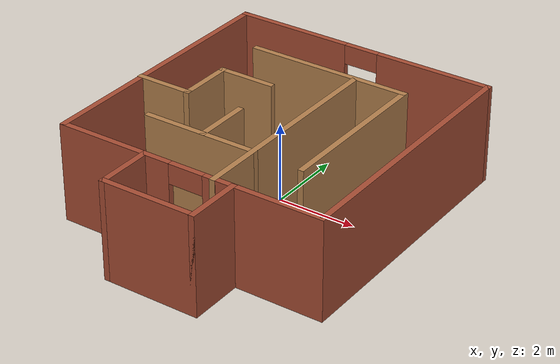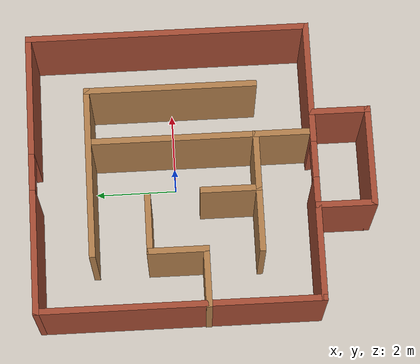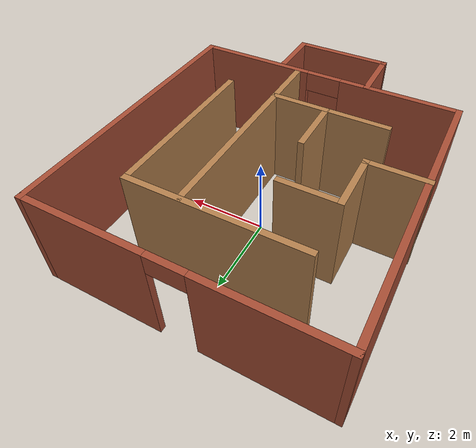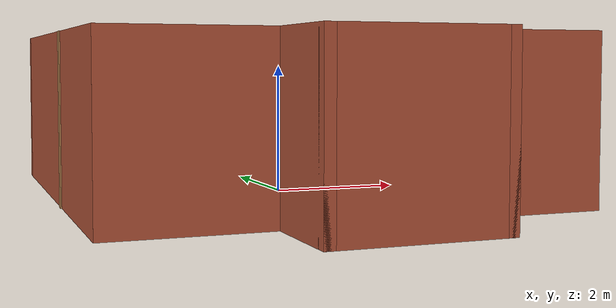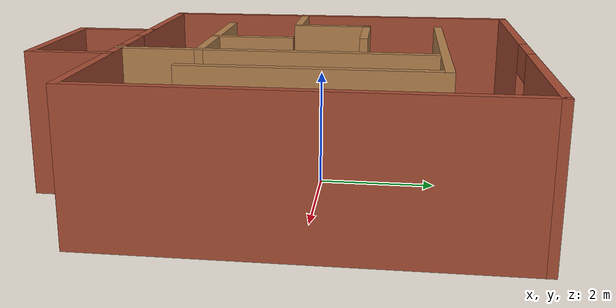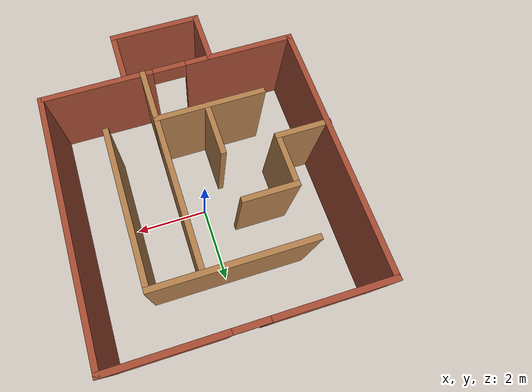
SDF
<?xml version='1.0'?>
<sdf version='1.7'>
  <model name='maze'>
    <pose>-0.0338 -0.658124 0 0 -0 0</pose>
    <link name='Wall_0'>
      <collision name='Wall_0_Collision'>
        <geometry>
          <box>
            <size>7 0.15 2.5</size>
          </box>
        </geometry>
        <pose>0 0 1.25 0 -0 0</pose>
      </collision>
      <visual name='Wall_0_Visual'>
        <pose>0 0 1.25 0 -0 0</pose>
        <geometry>
          <box>
            <size>7 0.15 2.5</size>
          </box>
        </geometry>
        <material>
          <script>
            <uri>file://media/materials/scripts/gazebo.material</uri>
            <name>Gazebo/Bricks</name>
          </script>
          <ambient>1 1 1 1</ambient>
        </material>
        <meta>
          <layer>0</layer>
        </meta>
      </visual>
      <pose>-3.41626 0.681812 0 0 -0 -1.5708</pose>
    </link>
    <link name='Wall_10'>
      <collision name='Wall_10_Collision'>
        <geometry>
          <box>
            <size>4.25 0.15 2.5</size>
          </box>
        </geometry>
        <pose>0 0 1.25 0 -0 0</pose>
      </collision>
      <visual name='Wall_10_Visual'>
        <pose>0 0 1.25 0 -0 0</pose>
        <geometry>
          <box>
            <size>4.25 0.15 2.5</size>
          </box>
        </geometry>
        <material>
          <script>
            <uri>file://media/materials/scripts/gazebo.material</uri>
            <name>Gazebo/Wood</name>
          </script>
          <ambient>1 1 1 1</ambient>
        </material>
        <meta>
          <layer>0</layer>
        </meta>
      </visual>
      <pose>2.01299 0.675098 0 0 -0 -1.5708</pose>
    </link>
    <link name='Wall_12'>
      <collision name='Wall_12_Collision'>
        <geometry>
          <box>
            <size>5.60693 0.15 2.5</size>
          </box>
        </geometry>
        <pose>0 0 1.25 0 -0 0</pose>
      </collision>
      <visual name='Wall_12_Visual'>
        <pose>0 0 1.25 0 -0 0</pose>
        <geometry>
          <box>
            <size>5.60693 0.15 2.5</size>
          </box>
        </geometry>
        <material>
          <script>
            <uri>file://media/materials/scripts/gazebo.material</uri>
            <name>Gazebo/Wood</name>
          </script>
          <ambient>1 1 1 1</ambient>
        </material>
        <meta>
          <layer>0</layer>
        </meta>
      </visual>
      <pose>0.711399 -0.020842 0 0 -0 -1.5708</pose>
    </link>
    <link name='Wall_14'>
      <collision name='Wall_14_Collision'>
        <geometry>
          <box>
            <size>1.5 0.15 2.5</size>
          </box>
        </geometry>
        <pose>0 0 1.25 0 -0 0</pose>
      </collision>
      <visual name='Wall_14_Visual'>
        <pose>0 0 1.25 0 -0 0</pose>
        <geometry>
          <box>
            <size>1.5 0.15 2.5</size>
          </box>
        </geometry>
        <material>
          <script>
            <uri>file://media/materials/scripts/gazebo.material</uri>
            <name>Gazebo/Wood</name>
          </script>
          <ambient>1 1 1 1</ambient>
        </material>
        <meta>
          <layer>0</layer>
        </meta>
      </visual>
      <pose>-2.75874 -0.003352 0 0 -0 0</pose>
    </link>
    <link name='Wall_15'>
      <collision name='Wall_15_Collision'>
        <geometry>
          <box>
            <size>1.5 0.15 2.5</size>
          </box>
        </geometry>
        <pose>0 0 1.25 0 -0 0</pose>
      </collision>
      <visual name='Wall_15_Visual'>
        <pose>0 0 1.25 0 -0 0</pose>
        <geometry>
          <box>
            <size>1.5 0.15 2.5</size>
          </box>
        </geometry>
        <material>
          <script>
            <uri>file://media/materials/scripts/gazebo.material</uri>
            <name>Gazebo/Wood</name>
          </script>
          <ambient>1 1 1 1</ambient>
        </material>
        <meta>
          <layer>0</layer>
        </meta>
      </visual>
      <pose>-2.08374 0.671648 0 0 -0 1.5708</pose>
    </link>
    <link name='Wall_16'>
      <collision name='Wall_16_Collision'>
        <geometry>
          <box>
            <size>1.5 0.15 2.5</size>
          </box>
        </geometry>
        <pose>0 0 1.25 0 -0 0</pose>
      </collision>
      <visual name='Wall_16_Visual'>
        <pose>0 0 1.25 0 -0 0</pose>
        <geometry>
          <box>
            <size>1.5 0.15 2.5</size>
          </box>
        </geometry>
        <material>
          <script>
            <uri>file://media/materials/scripts/gazebo.material</uri>
            <name>Gazebo/Wood</name>
          </script>
          <ambient>1 1 1 1</ambient>
        </material>
        <meta>
          <layer>0</layer>
        </meta>
      </visual>
      <pose>-1.40874 1.34665 0 0 -0 0</pose>
    </link>
    <link name='Wall_18'>
      <collision name='Wall_18_Collision'>
        <geometry>
          <box>
            <size>3 0.15 2.5</size>
          </box>
        </geometry>
        <pose>0 0 1.25 0 -0 0</pose>
      </collision>
      <visual name='Wall_18_Visual'>
        <pose>0 0 1.25 0 -0 0</pose>
        <geometry>
          <box>
            <size>3 0.15 2.5</size>
          </box>
        </geometry>
        <material>
          <script>
            <uri>file://media/materials/scripts/gazebo.material</uri>
            <name>Gazebo/Wood</name>
          </script>
          <ambient>1 1 1 1</ambient>
        </material>
        <meta>
          <layer>0</layer>
        </meta>
      </visual>
      <pose>-0.713601 -1.35009 0 0 -0 3.14159</pose>
    </link>
    <link name='Wall_20'>
      <collision name='Wall_20_Collision'>
        <geometry>
          <box>
            <size>1.5 0.15 2.5</size>
          </box>
        </geometry>
        <pose>0 0 1.25 0 -0 0</pose>
      </collision>
      <visual name='Wall_20_Visual'>
        <pose>0 0 1.25 0 -0 0</pose>
        <geometry>
          <box>
            <size>1.5 0.15 2.5</size>
          </box>
        </geometry>
        <material>
          <script>
            <uri>file://media/materials/scripts/gazebo.material</uri>
            <name>Gazebo/Wood</name>
          </script>
          <ambient>1 1 1 1</ambient>
        </material>
        <meta>
          <layer>0</layer>
        </meta>
      </visual>
      <pose>-0.635335 -0.675087 0 0 -0 1.5708</pose>
    </link>
    <link name='Wall_22'>
      <pose>0.008745 4.10681 0 0 -0 0</pose>
      <visual name='Wall_22_Visual_0'>
        <pose>-1.96767 0 1.25 0 -0 0</pose>
        <geometry>
          <box>
            <size>3.06465 0.15 2.5</size>
          </box>
        </geometry>
        <material>
          <script>
            <uri>file://media/materials/scripts/gazebo.material</uri>
            <name>Gazebo/Bricks</name>
          </script>
          <ambient>1 1 1 1</ambient>
        </material>
        <meta>
          <layer>0</layer>
        </meta>
      </visual>
      <collision name='Wall_22_Collision_0'>
        <geometry>
          <box>
            <size>3.06465 0.15 2.5</size>
          </box>
        </geometry>
        <pose>-1.96767 0 1.25 0 -0 0</pose>
      </collision>
      <visual name='Wall_22_Visual_1'>
        <pose>1.98233 0 1.25 0 -0 0</pose>
        <geometry>
          <box>
            <size>3.03535 0.15 2.5</size>
          </box>
        </geometry>
        <material>
          <script>
            <uri>file://media/materials/scripts/gazebo.material</uri>
            <name>Gazebo/Bricks</name>
          </script>
          <ambient>1 1 1 1</ambient>
        </material>
        <meta>
          <layer>0</layer>
        </meta>
      </visual>
      <collision name='Wall_22_Collision_1'>
        <geometry>
          <box>
            <size>3.03535 0.15 2.5</size>
          </box>
        </geometry>
        <pose>1.98233 0 1.25 0 -0 0</pose>
      </collision>
      <visual name='Wall_22_Visual_2'>
        <pose>0.014652 0 2.25 0 -0 0</pose>
        <geometry>
          <box>
            <size>0.9 0.15 0.5</size>
          </box>
        </geometry>
        <material>
          <script>
            <uri>file://media/materials/scripts/gazebo.material</uri>
            <name>Gazebo/Bricks</name>
          </script>
          <ambient>1 1 1 1</ambient>
        </material>
        <meta>
          <layer>0</layer>
        </meta>
      </visual>
      <collision name='Wall_22_Collision_2'>
        <geometry>
          <box>
            <size>0.9 0.15 0.5</size>
          </box>
        </geometry>
        <pose>0.014652 0 2.25 0 -0 0</pose>
      </collision>
    </link>
    <link name='Wall_24'>
      <collision name='Wall_24_Collision'>
        <geometry>
          <box>
            <size>1.5 0.15 2.5</size>
          </box>
        </geometry>
        <pose>0 0 1.25 0 -0 0</pose>
      </collision>
      <visual name='Wall_24_Visual'>
        <pose>0 0 1.25 0 -0 0</pose>
        <geometry>
          <box>
            <size>1.5 0.15 2.5</size>
          </box>
        </geometry>
        <material>
          <script>
            <uri>file://media/materials/scripts/gazebo.material</uri>
            <name>Gazebo/Bricks</name>
          </script>
          <ambient>1 1 1 1</ambient>
        </material>
        <meta>
          <layer>0</layer>
        </meta>
      </visual>
      <pose>-1.14701 -3.43181 0 0 -0 -1.5708</pose>
    </link>
    <link name='Wall_25'>
      <collision name='Wall_25_Collision'>
        <geometry>
          <box>
            <size>2.5 0.15 2.5</size>
          </box>
        </geometry>
        <pose>0 0 1.25 0 -0 0</pose>
      </collision>
      <visual name='Wall_25_Visual'>
        <pose>0 0 1.25 0 -0 0</pose>
        <geometry>
          <box>
            <size>2.5 0.15 2.5</size>
          </box>
        </geometry>
        <material>
          <script>
            <uri>file://media/materials/scripts/gazebo.material</uri>
            <name>Gazebo/Bricks</name>
          </script>
          <ambient>1 1 1 1</ambient>
        </material>
        <meta>
          <layer>0</layer>
        </meta>
      </visual>
      <pose>0.027988 -4.10681 0 0 -0 0</pose>
    </link>
    <link name='Wall_26'>
      <collision name='Wall_26_Collision'>
        <geometry>
          <box>
            <size>1.5 0.15 2.5</size>
          </box>
        </geometry>
        <pose>0 0 1.25 0 -0 0</pose>
      </collision>
      <visual name='Wall_26_Visual'>
        <pose>0 0 1.25 0 -0 0</pose>
        <geometry>
          <box>
            <size>1.5 0.15 2.5</size>
          </box>
        </geometry>
        <material>
          <script>
            <uri>file://media/materials/scripts/gazebo.material</uri>
            <name>Gazebo/Bricks</name>
          </script>
          <ambient>1 1 1 1</ambient>
        </material>
        <meta>
          <layer>0</layer>
        </meta>
      </visual>
      <pose>1.20299 -3.43181 0 0 -0 1.5708</pose>
    </link>
    <link name='Wall_3'>
      <pose>0.008745 -2.74319 0 0 -0 0</pose>
      <visual name='Wall_3_Visual_0'>
        <pose>-1.98097 0 1.25 0 -0 0</pose>
        <geometry>
          <box>
            <size>3.03805 0.15 2.5</size>
          </box>
        </geometry>
        <material>
          <script>
            <uri>file://media/materials/scripts/gazebo.material</uri>
            <name>Gazebo/Bricks</name>
          </script>
          <ambient>1 1 1 1</ambient>
        </material>
        <meta>
          <layer>0</layer>
        </meta>
      </visual>
      <collision name='Wall_3_Collision_0'>
        <geometry>
          <box>
            <size>3.03805 0.15 2.5</size>
          </box>
        </geometry>
        <pose>-1.98097 0 1.25 0 -0 0</pose>
      </collision>
      <visual name='Wall_3_Visual_1'>
        <pose>1.96903 0 1.25 0 -0 0</pose>
        <geometry>
          <box>
            <size>3.06195 0.15 2.5</size>
          </box>
        </geometry>
        <material>
          <script>
            <uri>file://media/materials/scripts/gazebo.material</uri>
            <name>Gazebo/Bricks</name>
          </script>
          <ambient>1 1 1 1</ambient>
        </material>
        <meta>
          <layer>0</layer>
        </meta>
      </visual>
      <collision name='Wall_3_Collision_1'>
        <geometry>
          <box>
            <size>3.06195 0.15 2.5</size>
          </box>
        </geometry>
        <pose>1.96903 0 1.25 0 -0 0</pose>
      </collision>
      <visual name='Wall_3_Visual_2'>
        <pose>-0.011948 0 2.25 0 -0 0</pose>
        <geometry>
          <box>
            <size>0.9 0.15 0.5</size>
          </box>
        </geometry>
        <material>
          <script>
            <uri>file://media/materials/scripts/gazebo.material</uri>
            <name>Gazebo/Bricks</name>
          </script>
          <ambient>1 1 1 1</ambient>
        </material>
        <meta>
          <layer>0</layer>
        </meta>
      </visual>
      <collision name='Wall_3_Collision_2'>
        <geometry>
          <box>
            <size>0.9 0.15 0.5</size>
          </box>
        </geometry>
        <pose>-0.011948 0 2.25 0 -0 0</pose>
      </collision>
    </link>
    <link name='Wall_4'>
      <collision name='Wall_4_Collision'>
        <geometry>
          <box>
            <size>7 0.15 2.5</size>
          </box>
        </geometry>
        <pose>0 0 1.25 0 -0 0</pose>
      </collision>
      <visual name='Wall_4_Visual'>
        <pose>0 0 1.25 0 -0 0</pose>
        <geometry>
          <box>
            <size>7 0.15 2.5</size>
          </box>
        </geometry>
        <material>
          <script>
            <uri>file://media/materials/scripts/gazebo.material</uri>
            <name>Gazebo/Bricks</name>
          </script>
          <ambient>1 1 1 1</ambient>
        </material>
        <meta>
          <layer>0</layer>
        </meta>
      </visual>
      <pose>3.43375 0.681812 0 0 -0 1.5708</pose>
    </link>
    <link name='Wall_9'>
      <collision name='Wall_9_Collision'>
        <geometry>
          <box>
            <size>4.25 0.15 2.5</size>
          </box>
        </geometry>
        <pose>0 0 1.25 0 -0 0</pose>
      </collision>
      <visual name='Wall_9_Visual'>
        <pose>0 0 1.25 0 -0 0</pose>
        <geometry>
          <box>
            <size>4.25 0.15 2.5</size>
          </box>
        </geometry>
        <material>
          <script>
            <uri>file://media/materials/scripts/gazebo.material</uri>
            <name>Gazebo/Wood</name>
          </script>
          <ambient>1 1 1 1</ambient>
        </material>
        <meta>
          <layer>0</layer>
        </meta>
      </visual>
      <pose>-0.037011 2.7251 0 0 -0 0</pose>
    </link>
    <static>1</static>
  </model>
</sdf>
